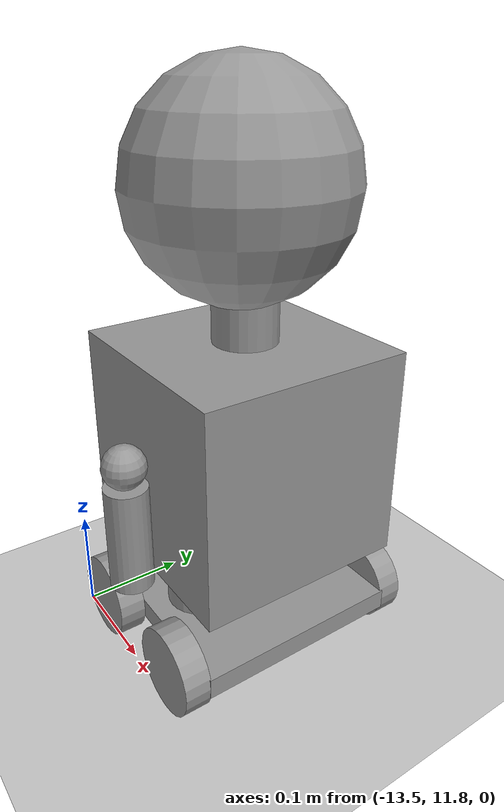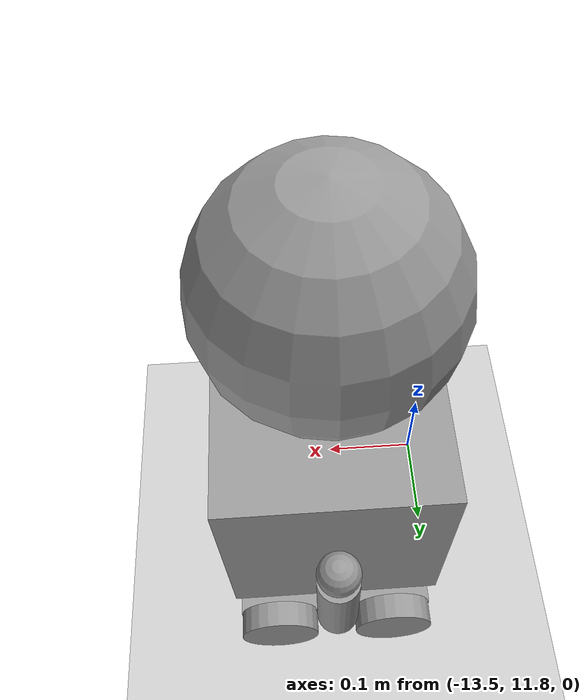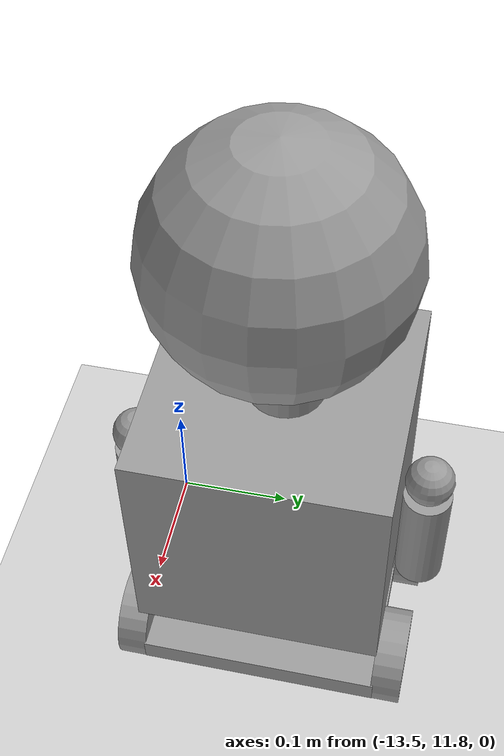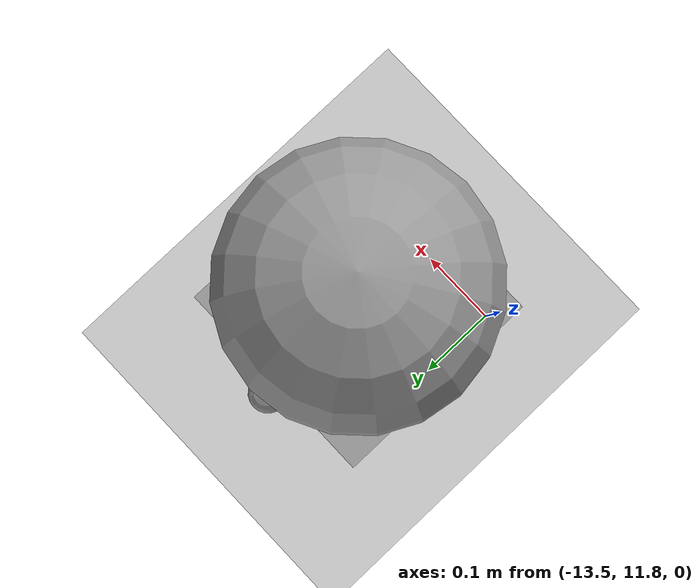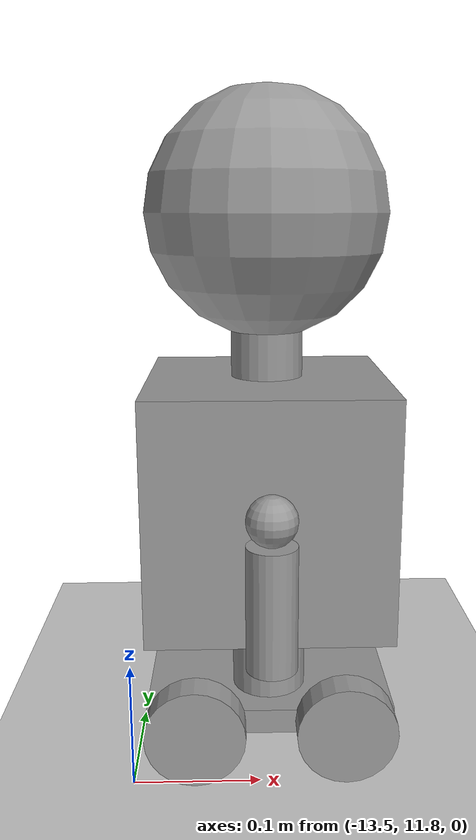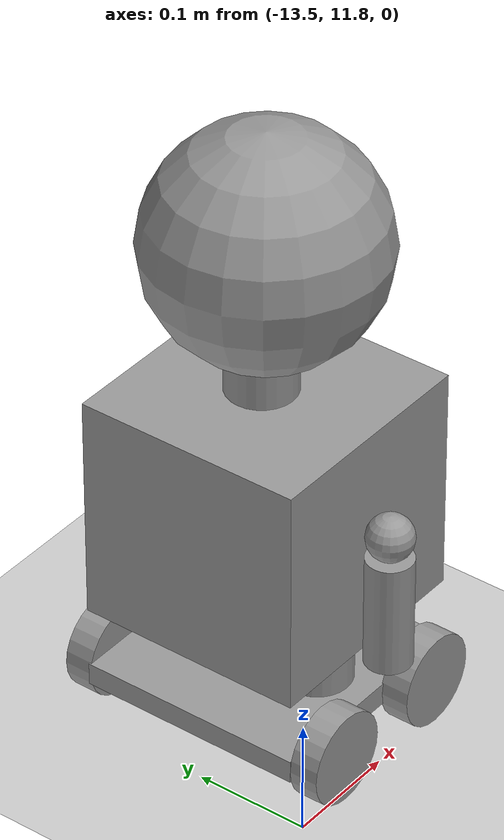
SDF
<sdf version="1.6">
 <world name="default">
  <model name="ground_plane">
   <static>1</static>
   <link name="link">
    <collision name="collision">
     <geometry><plane><normal>0 0 1</normal><size>100 100</size></plane></geometry>
     <surface><friction><ode><mu>100</mu><mu2>50</mu2></ode></friction></surface>
    </collision>
    <visual name="visual">
     <cast_shadows>0</cast_shadows>
     <geometry><plane><normal>0 0 1</normal><size>100 100</size></plane></geometry>
     <material>
      <script><uri>file://media/materials/scripts/gazebo.material</uri><name>Gazebo/Grey</name></script>
     </material>
    </visual>
   </link>
  </model>
  <model name="RoboX">
   <link name="link_0">
    <pose>2 1.99948 0.422775 0 -0 0</pose>
    <inertial>
     <mass>1</mass>
     <inertia>
      <ixx>0.166667</ixx>
      <ixy>0</ixy>
      <ixz>0</ixz>
      <iyy>0.166667</iyy>
      <iyz>0</iyz>
      <izz>0.166667</izz>
     </inertia>
    </inertial>
    <visual name="visual">
     <geometry><box><size>0.2 0.2 0.02</size></box></geometry>
     <material>
      <lighting>1</lighting>
      <script><uri>file://media/materials/scripts/gazebo.material</uri><name>Gazebo/Grey</name></script>
      <shader type="pixel"><normal_map>__default__</normal_map></shader>
      <ambient>0.3 0.3 0.3 1</ambient>
      <diffuse>0.7 0.7 0.7 1</diffuse>
      <specular>0.01 0.01 0.01 1</specular>
      <emissive>0 0 0 1</emissive>
     </material>
    </visual>
    <collision name="collision">
     <geometry><box><size>0.2 0.2 0.02</size></box></geometry>
     <surface>
      <friction>
       <ode><mu>1</mu><mu2>1</mu2><fdir1>0 0 0</fdir1><slip1>0</slip1><slip2>0</slip2></ode>
       <torsional>
        <coefficient>1</coefficient>
        <patch_radius>0</patch_radius>
        <surface_radius>0</surface_radius>
        <use_patch_radius>1</use_patch_radius>
        <ode><slip>0</slip></ode>
       </torsional>
      </friction>
      <bounce><restitution_coefficient>0</restitution_coefficient><threshold>1e+06</threshold></bounce>
      <contact>
       <collide_without_contact>0</collide_without_contact>
       <collide_without_contact_bitmask>1</collide_without_contact_bitmask>
       <collide_bitmask>1</collide_bitmask>
       <ode>
        <soft_cfm>0</soft_cfm>
        <soft_erp>0.2</soft_erp>
        <kp>1e+13</kp>
        <kd>1</kd>
        <max_vel>0.01</max_vel>
        <min_depth>0</min_depth>
       </ode>
       <bullet>
        <split_impulse>1</split_impulse>
        <split_impulse_penetration_threshold>-0.01</split_impulse_penetration_threshold>
        <soft_cfm>0</soft_cfm>
        <soft_erp>0.2</soft_erp>
        <kp>1e+13</kp>
        <kd>1</kd>
       </bullet>
      </contact>
     </surface>
    </collision>
   </link>
   <link name="link_1">
    <pose>1.94 1.88697 0.422775 1.5707 -0 0</pose>
    <inertial>
     <mass>1</mass>
     <inertia><ixx>0.145833</ixx><ixy>0</ixy><ixz>0</ixz><iyy>0.145833</iyy><iyz>0</iyz><izz>0.125</izz></inertia>
    </inertial>
    <visual name="visual">
     <geometry><cylinder><radius>0.04</radius><length>0.025</length></cylinder></geometry>
     <material>
      <lighting>1</lighting>
      <script><uri>file://media/materials/scripts/gazebo.material</uri><name>Gazebo/Grey</name></script>
      <shader type="pixel"><normal_map>__default__</normal_map></shader>
      <ambient>0.3 0.3 0.3 1</ambient>
      <diffuse>0.7 0.7 0.7 1</diffuse>
      <specular>0.01 0.01 0.01 1</specular>
      <emissive>0 0 0 1</emissive>
     </material>
    </visual>
    <collision name="collision">
     <geometry><cylinder><radius>0.04</radius><length>0.025</length></cylinder></geometry>
     <surface>
      <friction>
       <ode><mu>1</mu><mu2>1</mu2><fdir1>0 0 0</fdir1><slip1>0</slip1><slip2>0</slip2></ode>
       <torsional>
        <coefficient>1</coefficient>
        <patch_radius>0</patch_radius>
        <surface_radius>0</surface_radius>
        <use_patch_radius>1</use_patch_radius>
        <ode><slip>0</slip></ode>
       </torsional>
      </friction>
      <bounce><restitution_coefficient>0</restitution_coefficient><threshold>1e+06</threshold></bounce>
      <contact>
       <collide_without_contact>0</collide_without_contact>
       <collide_without_contact_bitmask>1</collide_without_contact_bitmask>
       <collide_bitmask>1</collide_bitmask>
       <ode>
        <soft_cfm>0</soft_cfm>
        <soft_erp>0.2</soft_erp>
        <kp>1e+13</kp>
        <kd>1</kd>
        <max_vel>0.01</max_vel>
        <min_depth>0</min_depth>
       </ode>
       <bullet>
        <split_impulse>1</split_impulse>
        <split_impulse_penetration_threshold>-0.01</split_impulse_penetration_threshold>
        <soft_cfm>0</soft_cfm>
        <soft_erp>0.2</soft_erp>
        <kp>1e+13</kp>
        <kd>1</kd>
       </bullet>
      </contact>
     </surface>
    </collision>
   </link>
   <link name="link_1_clone">
    <pose>1.94 2.11011 0.422775 1.5707 -0 0</pose>
    <inertial>
     <mass>1</mass>
     <inertia><ixx>0.145833</ixx><ixy>0</ixy><ixz>0</ixz><iyy>0.145833</iyy><iyz>0</iyz><izz>0.125</izz></inertia>
    </inertial>
    <visual name="visual">
     <geometry><cylinder><radius>0.04</radius><length>0.025</length></cylinder></geometry>
     <material>
      <lighting>1</lighting>
      <script><uri>file://media/materials/scripts/gazebo.material</uri><name>Gazebo/Grey</name></script>
      <shader type="pixel"><normal_map>__default__</normal_map></shader>
      <ambient>0.3 0.3 0.3 1</ambient>
      <diffuse>0.7 0.7 0.7 1</diffuse>
      <specular>0.01 0.01 0.01 1</specular>
      <emissive>0 0 0 1</emissive>
     </material>
    </visual>
    <collision name="collision">
     <geometry><cylinder><radius>0.04</radius><length>0.025</length></cylinder></geometry>
     <surface>
      <friction>
       <ode><mu>1</mu><mu2>1</mu2><fdir1>0 0 0</fdir1><slip1>0</slip1><slip2>0</slip2></ode>
       <torsional>
        <coefficient>1</coefficient>
        <patch_radius>0</patch_radius>
        <surface_radius>0</surface_radius>
        <use_patch_radius>1</use_patch_radius>
        <ode><slip>0</slip></ode>
       </torsional>
      </friction>
      <bounce><restitution_coefficient>0</restitution_coefficient><threshold>1e+06</threshold></bounce>
      <contact>
       <collide_without_contact>0</collide_without_contact>
       <collide_without_contact_bitmask>1</collide_without_contact_bitmask>
       <collide_bitmask>1</collide_bitmask>
       <ode>
        <soft_cfm>0</soft_cfm>
        <soft_erp>0.2</soft_erp>
        <kp>1e+13</kp>
        <kd>1</kd>
        <max_vel>0.01</max_vel>
        <min_depth>0</min_depth>
       </ode>
       <bullet>
        <split_impulse>1</split_impulse>
        <split_impulse_penetration_threshold>-0.01</split_impulse_penetration_threshold>
        <soft_cfm>0</soft_cfm>
        <soft_erp>0.2</soft_erp>
        <kp>1e+13</kp>
        <kd>1</kd>
       </bullet>
      </contact>
     </surface>
    </collision>
   </link>
   <link name="link_1_clone_0">
    <pose>2.06 1.88807 0.422775 1.5707 -0 0</pose>
    <inertial>
     <mass>1</mass>
     <inertia><ixx>0.145833</ixx><ixy>0</ixy><ixz>0</ixz><iyy>0.145833</iyy><iyz>0</iyz><izz>0.125</izz></inertia>
    </inertial>
    <visual name="visual">
     <geometry><cylinder><radius>0.04</radius><length>0.025</length></cylinder></geometry>
     <material>
      <lighting>1</lighting>
      <script><uri>file://media/materials/scripts/gazebo.material</uri><name>Gazebo/Grey</name></script>
      <shader type="pixel"><normal_map>__default__</normal_map></shader>
      <ambient>0.3 0.3 0.3 1</ambient>
      <diffuse>0.7 0.7 0.7 1</diffuse>
      <specular>0.01 0.01 0.01 1</specular>
      <emissive>0 0 0 1</emissive>
     </material>
    </visual>
    <collision name="collision">
     <geometry><cylinder><radius>0.04</radius><length>0.025</length></cylinder></geometry>
     <surface>
      <friction>
       <ode><mu>1</mu><mu2>1</mu2><fdir1>0 0 0</fdir1><slip1>0</slip1><slip2>0</slip2></ode>
       <torsional>
        <coefficient>1</coefficient>
        <patch_radius>0</patch_radius>
        <surface_radius>0</surface_radius>
        <use_patch_radius>1</use_patch_radius>
        <ode><slip>0</slip></ode>
       </torsional>
      </friction>
      <bounce><restitution_coefficient>0</restitution_coefficient><threshold>1e+06</threshold></bounce>
      <contact>
       <collide_without_contact>0</collide_without_contact>
       <collide_without_contact_bitmask>1</collide_without_contact_bitmask>
       <collide_bitmask>1</collide_bitmask>
       <ode>
        <soft_cfm>0</soft_cfm>
        <soft_erp>0.2</soft_erp>
        <kp>1e+13</kp>
        <kd>1</kd>
        <max_vel>0.01</max_vel>
        <min_depth>0</min_depth>
       </ode>
       <bullet>
        <split_impulse>1</split_impulse>
        <split_impulse_penetration_threshold>-0.01</split_impulse_penetration_threshold>
        <soft_cfm>0</soft_cfm>
        <soft_erp>0.2</soft_erp>
        <kp>1e+13</kp>
        <kd>1</kd>
       </bullet>
      </contact>
     </surface>
    </collision>
   </link>
   <link name="link_1_clone_1">
    <pose>2.06 2.11011 0.422775 1.5707 -0 0</pose>
    <inertial>
     <mass>1</mass>
     <inertia><ixx>0.145833</ixx><ixy>0</ixy><ixz>0</ixz><iyy>0.145833</iyy><iyz>0</iyz><izz>0.125</izz></inertia>
    </inertial>
    <visual name="visual">
     <geometry><cylinder><radius>0.04</radius><length>0.025</length></cylinder></geometry>
     <material>
      <lighting>1</lighting>
      <script><uri>file://media/materials/scripts/gazebo.material</uri><name>Gazebo/Grey</name></script>
      <shader type="pixel"><normal_map>__default__</normal_map></shader>
      <ambient>0.3 0.3 0.3 1</ambient>
      <diffuse>0.7 0.7 0.7 1</diffuse>
      <specular>0.01 0.01 0.01 1</specular>
      <emissive>0 0 0 1</emissive>
     </material>
    </visual>
    <collision name="collision">
     <geometry><cylinder><radius>0.04</radius><length>0.025</length></cylinder></geometry>
     <surface>
      <friction>
       <ode><mu>1</mu><mu2>1</mu2><fdir1>0 0 0</fdir1><slip1>0</slip1><slip2>0</slip2></ode>
       <torsional>
        <coefficient>1</coefficient>
        <patch_radius>0</patch_radius>
        <surface_radius>0</surface_radius>
        <use_patch_radius>1</use_patch_radius>
        <ode><slip>0</slip></ode>
       </torsional>
      </friction>
      <bounce><restitution_coefficient>0</restitution_coefficient><threshold>1e+06</threshold></bounce>
      <contact>
       <collide_without_contact>0</collide_without_contact>
       <collide_without_contact_bitmask>1</collide_without_contact_bitmask>
       <collide_bitmask>1</collide_bitmask>
       <ode>
        <soft_cfm>0</soft_cfm>
        <soft_erp>0.2</soft_erp>
        <kp>1e+13</kp>
        <kd>1</kd>
        <max_vel>0.01</max_vel>
        <min_depth>0</min_depth>
       </ode>
       <bullet>
        <split_impulse>1</split_impulse>
        <split_impulse_penetration_threshold>-0.01</split_impulse_penetration_threshold>
        <soft_cfm>0</soft_cfm>
        <soft_erp>0.2</soft_erp>
        <kp>1e+13</kp>
        <kd>1</kd>
       </bullet>
      </contact>
     </surface>
    </collision>
   </link>
   <link name="link_2">
    <pose>2 1.94895 0.472775 0 -0 0</pose>
    <inertial>
     <mass>1</mass>
     <inertia><ixx>0.145833</ixx><ixy>0</ixy><ixz>0</ixz><iyy>0.145833</iyy><iyz>0</iyz><izz>0.125</izz></inertia>
    </inertial>
    <visual name="visual">
     <geometry><cylinder><radius>0.03</radius><length>0.1</length></cylinder></geometry>
     <material>
      <lighting>1</lighting>
      <script><uri>file://media/materials/scripts/gazebo.material</uri><name>Gazebo/Grey</name></script>
      <shader type="pixel"><normal_map>__default__</normal_map></shader>
      <ambient>0.3 0.3 0.3 1</ambient>
      <diffuse>0.7 0.7 0.7 1</diffuse>
      <specular>0.01 0.01 0.01 1</specular>
      <emissive>0 0 0 1</emissive>
     </material>
    </visual>
    <collision name="collision">
     <geometry><cylinder><radius>0.03</radius><length>0.1</length></cylinder></geometry>
     <surface>
      <friction>
       <ode><mu>1</mu><mu2>1</mu2><fdir1>0 0 0</fdir1><slip1>0</slip1><slip2>0</slip2></ode>
       <torsional>
        <coefficient>1</coefficient>
        <patch_radius>0</patch_radius>
        <surface_radius>0</surface_radius>
        <use_patch_radius>1</use_patch_radius>
        <ode><slip>0</slip></ode>
       </torsional>
      </friction>
      <bounce><restitution_coefficient>0</restitution_coefficient><threshold>1e+06</threshold></bounce>
      <contact>
       <collide_without_contact>0</collide_without_contact>
       <collide_without_contact_bitmask>1</collide_without_contact_bitmask>
       <collide_bitmask>1</collide_bitmask>
       <ode>
        <soft_cfm>0</soft_cfm>
        <soft_erp>0.2</soft_erp>
        <kp>1e+13</kp>
        <kd>1</kd>
        <max_vel>0.01</max_vel>
        <min_depth>0</min_depth>
       </ode>
       <bullet>
        <split_impulse>1</split_impulse>
        <split_impulse_penetration_threshold>-0.01</split_impulse_penetration_threshold>
        <soft_cfm>0</soft_cfm>
        <soft_erp>0.2</soft_erp>
        <kp>1e+13</kp>
        <kd>1</kd>
       </bullet>
      </contact>
     </surface>
    </collision>
   </link>
   <link name="link_2_clone">
    <pose>2 2.04895 0.472775 0 -0 0</pose>
    <inertial>
     <mass>1</mass>
     <inertia><ixx>0.145833</ixx><ixy>0</ixy><ixz>0</ixz><iyy>0.145833</iyy><iyz>0</iyz><izz>0.125</izz></inertia>
    </inertial>
    <visual name="visual">
     <geometry><cylinder><radius>0.03</radius><length>0.1</length></cylinder></geometry>
     <material>
      <lighting>1</lighting>
      <script><uri>file://media/materials/scripts/gazebo.material</uri><name>Gazebo/Grey</name></script>
      <shader type="pixel"><normal_map>__default__</normal_map></shader>
      <ambient>0.3 0.3 0.3 1</ambient>
      <diffuse>0.7 0.7 0.7 1</diffuse>
      <specular>0.01 0.01 0.01 1</specular>
      <emissive>0 0 0 1</emissive>
     </material>
    </visual>
    <collision name="collision">
     <geometry><cylinder><radius>0.03</radius><length>0.1</length></cylinder></geometry>
     <surface>
      <friction>
       <ode><mu>1</mu><mu2>1</mu2><fdir1>0 0 0</fdir1><slip1>0</slip1><slip2>0</slip2></ode>
       <torsional>
        <coefficient>1</coefficient>
        <patch_radius>0</patch_radius>
        <surface_radius>0</surface_radius>
        <use_patch_radius>1</use_patch_radius>
        <ode><slip>0</slip></ode>
       </torsional>
      </friction>
      <bounce><restitution_coefficient>0</restitution_coefficient><threshold>1e+06</threshold></bounce>
      <contact>
       <collide_without_contact>0</collide_without_contact>
       <collide_without_contact_bitmask>1</collide_without_contact_bitmask>
       <collide_bitmask>1</collide_bitmask>
       <ode>
        <soft_cfm>0</soft_cfm>
        <soft_erp>0.2</soft_erp>
        <kp>1e+13</kp>
        <kd>1</kd>
        <max_vel>0.01</max_vel>
        <min_depth>0</min_depth>
       </ode>
       <bullet>
        <split_impulse>1</split_impulse>
        <split_impulse_penetration_threshold>-0.01</split_impulse_penetration_threshold>
        <soft_cfm>0</soft_cfm>
        <soft_erp>0.2</soft_erp>
        <kp>1e+13</kp>
        <kd>1</kd>
       </bullet>
      </contact>
     </surface>
    </collision>
   </link>
   <link name="link_2_clone_clone">
    <pose>2 2.00366 0.721525 0 -0 0</pose>
    <inertial>
     <mass>1</mass>
     <inertia><ixx>0.145833</ixx><ixy>0</ixy><ixz>0</ixz><iyy>0.145833</iyy><iyz>0</iyz><izz>0.125</izz></inertia>
    </inertial>
    <visual name="visual">
     <geometry><cylinder><radius>0.03</radius><length>0.1</length></cylinder></geometry>
     <material>
      <lighting>1</lighting>
      <script><uri>file://media/materials/scripts/gazebo.material</uri><name>Gazebo/Grey</name></script>
      <shader type="pixel"><normal_map>__default__</normal_map></shader>
      <ambient>0.3 0.3 0.3 1</ambient>
      <diffuse>0.7 0.7 0.7 1</diffuse>
      <specular>0.01 0.01 0.01 1</specular>
      <emissive>0 0 0 1</emissive>
     </material>
    </visual>
    <collision name="collision">
     <geometry><cylinder><radius>0.03</radius><length>0.1</length></cylinder></geometry>
     <surface>
      <friction>
       <ode><mu>1</mu><mu2>1</mu2><fdir1>0 0 0</fdir1><slip1>0</slip1><slip2>0</slip2></ode>
       <torsional>
        <coefficient>1</coefficient>
        <patch_radius>0</patch_radius>
        <surface_radius>0</surface_radius>
        <use_patch_radius>1</use_patch_radius>
        <ode><slip>0</slip></ode>
       </torsional>
      </friction>
      <bounce><restitution_coefficient>0</restitution_coefficient><threshold>1e+06</threshold></bounce>
      <contact>
       <collide_without_contact>0</collide_without_contact>
       <collide_without_contact_bitmask>1</collide_without_contact_bitmask>
       <collide_bitmask>1</collide_bitmask>
       <ode>
        <soft_cfm>0</soft_cfm>
        <soft_erp>0.2</soft_erp>
        <kp>1e+13</kp>
        <kd>1</kd>
        <max_vel>0.01</max_vel>
        <min_depth>0</min_depth>
       </ode>
       <bullet>
        <split_impulse>1</split_impulse>
        <split_impulse_penetration_threshold>-0.01</split_impulse_penetration_threshold>
        <soft_cfm>0</soft_cfm>
        <soft_erp>0.2</soft_erp>
        <kp>1e+13</kp>
        <kd>1</kd>
       </bullet>
      </contact>
     </surface>
    </collision>
   </link>
   <link name="link_3">
    <pose>2 1.99948 0.587061 0 -0 0</pose>
    <inertial>
     <mass>1</mass>
     <inertia>
      <ixx>0.166667</ixx>
      <ixy>0</ixy>
      <ixz>0</ixz>
      <iyy>0.166667</iyy>
      <iyz>0</iyz>
      <izz>0.166667</izz>
     </inertia>
    </inertial>
    <visual name="visual">
     <geometry><box><size>0.2 0.2 0.2</size></box></geometry>
     <material>
      <lighting>1</lighting>
      <script><uri>file://media/materials/scripts/gazebo.material</uri><name>Gazebo/Grey</name></script>
      <shader type="pixel"><normal_map>__default__</normal_map></shader>
      <ambient>0.3 0.3 0.3 1</ambient>
      <diffuse>0.7 0.7 0.7 1</diffuse>
      <specular>0.01 0.01 0.01 1</specular>
      <emissive>0 0 0 1</emissive>
     </material>
    </visual>
    <collision name="collision">
     <geometry><box><size>0.2 0.2 0.2</size></box></geometry>
     <surface>
      <friction>
       <ode><mu>1</mu><mu2>1</mu2><fdir1>0 0 0</fdir1><slip1>0</slip1><slip2>0</slip2></ode>
       <torsional>
        <coefficient>1</coefficient>
        <patch_radius>0</patch_radius>
        <surface_radius>0</surface_radius>
        <use_patch_radius>1</use_patch_radius>
        <ode><slip>0</slip></ode>
       </torsional>
      </friction>
      <bounce><restitution_coefficient>0</restitution_coefficient><threshold>1e+06</threshold></bounce>
      <contact>
       <collide_without_contact>0</collide_without_contact>
       <collide_without_contact_bitmask>1</collide_without_contact_bitmask>
       <collide_bitmask>1</collide_bitmask>
       <ode>
        <soft_cfm>0</soft_cfm>
        <soft_erp>0.2</soft_erp>
        <kp>1e+13</kp>
        <kd>1</kd>
        <max_vel>0.01</max_vel>
        <min_depth>0</min_depth>
       </ode>
       <bullet>
        <split_impulse>1</split_impulse>
        <split_impulse_penetration_threshold>-0.01</split_impulse_penetration_threshold>
        <soft_cfm>0</soft_cfm>
        <soft_erp>0.2</soft_erp>
        <kp>1e+13</kp>
        <kd>1</kd>
       </bullet>
      </contact>
     </surface>
    </collision>
   </link>
   <link name="link_4">
    <pose>2 1.99901 0.821525 0 -0 0</pose>
    <inertial>
     <mass>1</mass>
     <inertia><ixx>0.1</ixx><ixy>0</ixy><ixz>0</ixz><iyy>0.1</iyy><iyz>0</iyz><izz>0.1</izz></inertia>
    </inertial>
    <visual name="visual">
     <geometry><sphere><radius>0.1</radius></sphere></geometry>
     <material>
      <lighting>1</lighting>
      <script><uri>file://media/materials/scripts/gazebo.material</uri><name>Gazebo/Grey</name></script>
      <shader type="pixel"><normal_map>__default__</normal_map></shader>
      <ambient>0.3 0.3 0.3 1</ambient>
      <diffuse>0.7 0.7 0.7 1</diffuse>
      <specular>0.01 0.01 0.01 1</specular>
      <emissive>0 0 0 1</emissive>
     </material>
    </visual>
    <collision name="collision">
     <geometry><sphere><radius>0.1</radius></sphere></geometry>
     <surface>
      <friction>
       <ode><mu>1</mu><mu2>1</mu2><fdir1>0 0 0</fdir1><slip1>0</slip1><slip2>0</slip2></ode>
       <torsional>
        <coefficient>1</coefficient>
        <patch_radius>0</patch_radius>
        <surface_radius>0</surface_radius>
        <use_patch_radius>1</use_patch_radius>
        <ode><slip>0</slip></ode>
       </torsional>
      </friction>
      <bounce><restitution_coefficient>0</restitution_coefficient><threshold>1e+06</threshold></bounce>
      <contact>
       <collide_without_contact>0</collide_without_contact>
       <collide_without_contact_bitmask>1</collide_without_contact_bitmask>
       <collide_bitmask>1</collide_bitmask>
       <ode>
        <soft_cfm>0</soft_cfm>
        <soft_erp>0.2</soft_erp>
        <kp>1e+13</kp>
        <kd>1</kd>
        <max_vel>0.01</max_vel>
        <min_depth>0</min_depth>
       </ode>
       <bullet>
        <split_impulse>1</split_impulse>
        <split_impulse_penetration_threshold>-0.01</split_impulse_penetration_threshold>
        <soft_cfm>0</soft_cfm>
        <soft_erp>0.2</soft_erp>
        <kp>1e+13</kp>
        <kd>1</kd>
       </bullet>
      </contact>
     </surface>
    </collision>
   </link>
   <link name="link_5">
    <pose>2 2.11994 0.600204 0 -0 0</pose>
    <inertial>
     <mass>1</mass>
     <inertia><ixx>0.1</ixx><ixy>0</ixy><ixz>0</ixz><iyy>0.1</iyy><iyz>0</iyz><izz>0.1</izz></inertia>
    </inertial>
    <visual name="visual">
     <geometry><sphere><radius>0.02</radius></sphere></geometry>
     <material>
      <lighting>1</lighting>
      <script><uri>file://media/materials/scripts/gazebo.material</uri><name>Gazebo/Grey</name></script>
      <shader type="pixel"><normal_map>__default__</normal_map></shader>
      <ambient>0.3 0.3 0.3 1</ambient>
      <diffuse>0.7 0.7 0.7 1</diffuse>
      <specular>0.01 0.01 0.01 1</specular>
      <emissive>0 0 0 1</emissive>
     </material>
    </visual>
    <collision name="collision">
     <geometry><sphere><radius>0.02</radius></sphere></geometry>
     <surface>
      <friction>
       <ode><mu>1</mu><mu2>1</mu2><fdir1>0 0 0</fdir1><slip1>0</slip1><slip2>0</slip2></ode>
       <torsional>
        <coefficient>1</coefficient>
        <patch_radius>0</patch_radius>
        <surface_radius>0</surface_radius>
        <use_patch_radius>1</use_patch_radius>
        <ode><slip>0</slip></ode>
       </torsional>
      </friction>
      <bounce><restitution_coefficient>0</restitution_coefficient><threshold>1e+06</threshold></bounce>
      <contact>
       <collide_without_contact>0</collide_without_contact>
       <collide_without_contact_bitmask>1</collide_without_contact_bitmask>
       <collide_bitmask>1</collide_bitmask>
       <ode>
        <soft_cfm>0</soft_cfm>
        <soft_erp>0.2</soft_erp>
        <kp>1e+13</kp>
        <kd>1</kd>
        <max_vel>0.01</max_vel>
        <min_depth>0</min_depth>
       </ode>
       <bullet>
        <split_impulse>1</split_impulse>
        <split_impulse_penetration_threshold>-0.01</split_impulse_penetration_threshold>
        <soft_cfm>0</soft_cfm>
        <soft_erp>0.2</soft_erp>
        <kp>1e+13</kp>
        <kd>1</kd>
       </bullet>
      </contact>
     </surface>
    </collision>
   </link>
   <link name="link_5_clone">
    <pose>2 1.87994 0.600204 0 -0 0</pose>
    <inertial>
     <mass>1</mass>
     <inertia><ixx>0.1</ixx><ixy>0</ixy><ixz>0</ixz><iyy>0.1</iyy><iyz>0</iyz><izz>0.1</izz></inertia>
    </inertial>
    <visual name="visual">
     <geometry><sphere><radius>0.02</radius></sphere></geometry>
     <material>
      <lighting>1</lighting>
      <script><uri>file://media/materials/scripts/gazebo.material</uri><name>Gazebo/Grey</name></script>
      <shader type="pixel"><normal_map>__default__</normal_map></shader>
      <ambient>0.3 0.3 0.3 1</ambient>
      <diffuse>0.7 0.7 0.7 1</diffuse>
      <specular>0.01 0.01 0.01 1</specular>
      <emissive>0 0 0 1</emissive>
     </material>
    </visual>
    <collision name="collision">
     <geometry><sphere><radius>0.02</radius></sphere></geometry>
     <surface>
      <friction>
       <ode><mu>1</mu><mu2>1</mu2><fdir1>0 0 0</fdir1><slip1>0</slip1><slip2>0</slip2></ode>
       <torsional>
        <coefficient>1</coefficient>
        <patch_radius>0</patch_radius>
        <surface_radius>0</surface_radius>
        <use_patch_radius>1</use_patch_radius>
        <ode><slip>0</slip></ode>
       </torsional>
      </friction>
      <bounce><restitution_coefficient>0</restitution_coefficient><threshold>1e+06</threshold></bounce>
      <contact>
       <collide_without_contact>0</collide_without_contact>
       <collide_without_contact_bitmask>1</collide_without_contact_bitmask>
       <collide_bitmask>1</collide_bitmask>
       <ode>
        <soft_cfm>0</soft_cfm>
        <soft_erp>0.2</soft_erp>
        <kp>1e+13</kp>
        <kd>1</kd>
        <max_vel>0.01</max_vel>
        <min_depth>0</min_depth>
       </ode>
       <bullet>
        <split_impulse>1</split_impulse>
        <split_impulse_penetration_threshold>-0.01</split_impulse_penetration_threshold>
        <soft_cfm>0</soft_cfm>
        <soft_erp>0.2</soft_erp>
        <kp>1e+13</kp>
        <kd>1</kd>
       </bullet>
      </contact>
     </surface>
    </collision>
   </link>
   <link name="link_6">
    <pose>2 2.11994 0.531067 0 -0 0</pose>
    <inertial>
     <mass>1</mass>
     <inertia><ixx>0.145833</ixx><ixy>0</ixy><ixz>0</ixz><iyy>0.145833</iyy><iyz>0</iyz><izz>0.125</izz></inertia>
    </inertial>
    <visual name="visual">
     <geometry><cylinder><radius>0.02</radius><length>0.1</length></cylinder></geometry>
     <material>
      <lighting>1</lighting>
      <script><uri>file://media/materials/scripts/gazebo.material</uri><name>Gazebo/Grey</name></script>
      <shader type="pixel"><normal_map>__default__</normal_map></shader>
      <ambient>0.3 0.3 0.3 1</ambient>
      <diffuse>0.7 0.7 0.7 1</diffuse>
      <specular>0.01 0.01 0.01 1</specular>
      <emissive>0 0 0 1</emissive>
     </material>
    </visual>
    <collision name="collision">
     <geometry><cylinder><radius>0.02</radius><length>0.1</length></cylinder></geometry>
     <surface>
      <friction>
       <ode><mu>1</mu><mu2>1</mu2><fdir1>0 0 0</fdir1><slip1>0</slip1><slip2>0</slip2></ode>
       <torsional>
        <coefficient>1</coefficient>
        <patch_radius>0</patch_radius>
        <surface_radius>0</surface_radius>
        <use_patch_radius>1</use_patch_radius>
        <ode><slip>0</slip></ode>
       </torsional>
      </friction>
      <bounce><restitution_coefficient>0</restitution_coefficient><threshold>1e+06</threshold></bounce>
      <contact>
       <collide_without_contact>0</collide_without_contact>
       <collide_without_contact_bitmask>1</collide_without_contact_bitmask>
       <collide_bitmask>1</collide_bitmask>
       <ode>
        <soft_cfm>0</soft_cfm>
        <soft_erp>0.2</soft_erp>
        <kp>1e+13</kp>
        <kd>1</kd>
        <max_vel>0.01</max_vel>
        <min_depth>0</min_depth>
       </ode>
       <bullet>
        <split_impulse>1</split_impulse>
        <split_impulse_penetration_threshold>-0.01</split_impulse_penetration_threshold>
        <soft_cfm>0</soft_cfm>
        <soft_erp>0.2</soft_erp>
        <kp>1e+13</kp>
        <kd>1</kd>
       </bullet>
      </contact>
     </surface>
    </collision>
   </link>
   <link name="link_6_clone">
    <pose>2 1.87994 0.531067 0 -0 0</pose>
    <inertial>
     <mass>1</mass>
     <inertia><ixx>0.145833</ixx><ixy>0</ixy><ixz>0</ixz><iyy>0.145833</iyy><iyz>0</iyz><izz>0.125</izz></inertia>
    </inertial>
    <visual name="visual">
     <geometry><cylinder><radius>0.02</radius><length>0.1</length></cylinder></geometry>
     <material>
      <lighting>1</lighting>
      <script><uri>file://media/materials/scripts/gazebo.material</uri><name>Gazebo/Grey</name></script>
      <shader type="pixel"><normal_map>__default__</normal_map></shader>
      <ambient>0.3 0.3 0.3 1</ambient>
      <diffuse>0.7 0.7 0.7 1</diffuse>
      <specular>0.01 0.01 0.01 1</specular>
      <emissive>0 0 0 1</emissive>
     </material>
    </visual>
    <collision name="collision">
     <geometry><cylinder><radius>0.02</radius><length>0.1</length></cylinder></geometry>
     <surface>
      <friction>
       <ode><mu>1</mu><mu2>1</mu2><fdir1>0 0 0</fdir1><slip1>0</slip1><slip2>0</slip2></ode>
       <torsional>
        <coefficient>1</coefficient>
        <patch_radius>0</patch_radius>
        <surface_radius>0</surface_radius>
        <use_patch_radius>1</use_patch_radius>
        <ode><slip>0</slip></ode>
       </torsional>
      </friction>
      <bounce><restitution_coefficient>0</restitution_coefficient><threshold>1e+06</threshold></bounce>
      <contact>
       <collide_without_contact>0</collide_without_contact>
       <collide_without_contact_bitmask>1</collide_without_contact_bitmask>
       <collide_bitmask>1</collide_bitmask>
       <ode>
        <soft_cfm>0</soft_cfm>
        <soft_erp>0.2</soft_erp>
        <kp>1e+13</kp>
        <kd>1</kd>
        <max_vel>0.01</max_vel>
        <min_depth>0</min_depth>
       </ode>
       <bullet>
        <split_impulse>1</split_impulse>
        <split_impulse_penetration_threshold>-0.01</split_impulse_penetration_threshold>
        <soft_cfm>0</soft_cfm>
        <soft_erp>0.2</soft_erp>
        <kp>1e+13</kp>
        <kd>1</kd>
       </bullet>
      </contact>
     </surface>
    </collision>
   </link>
   <joint name="link_wheel1" type="revolute">
    <parent>link_0</parent>
    <child>link_1</child>
    <axis>
     <xyz>0 0 1</xyz>
     <use_parent_model_frame>0</use_parent_model_frame>
     <limit>
      <lower>-1.79769e+308</lower>
      <upper>1.79769e+308</upper>
      <effort>-1</effort>
      <velocity>-1</velocity>
     </limit>
     <dynamics>
      <spring_reference>0</spring_reference>
      <spring_stiffness>0</spring_stiffness>
      <damping>0</damping>
      <friction>0</friction>
     </dynamics>
    </axis>
    <physics>
     <ode><limit><cfm>0</cfm><erp>0.2</erp></limit><suspension><cfm>0</cfm><erp>0.2</erp></suspension></ode>
    </physics>
   </joint>
   <joint name="link_wheel2" type="revolute">
    <parent>link_0</parent>
    <child>link_1_clone</child>
    <axis>
     <xyz>0 0 1</xyz>
     <use_parent_model_frame>0</use_parent_model_frame>
     <limit>
      <lower>-1.79769e+308</lower>
      <upper>1.79769e+308</upper>
      <effort>-1</effort>
      <velocity>-1</velocity>
     </limit>
     <dynamics>
      <spring_reference>0</spring_reference>
      <spring_stiffness>0</spring_stiffness>
      <damping>0</damping>
      <friction>0</friction>
     </dynamics>
    </axis>
    <physics>
     <ode><limit><cfm>0</cfm><erp>0.2</erp></limit><suspension><cfm>0</cfm><erp>0.2</erp></suspension></ode>
    </physics>
   </joint>
   <joint name="link_wheel3" type="revolute">
    <parent>link_0</parent>
    <child>link_1_clone_0</child>
    <axis>
     <xyz>0 0 1</xyz>
     <use_parent_model_frame>0</use_parent_model_frame>
     <limit>
      <lower>-1.79769e+308</lower>
      <upper>1.79769e+308</upper>
      <effort>-1</effort>
      <velocity>-1</velocity>
     </limit>
     <dynamics>
      <spring_reference>0</spring_reference>
      <spring_stiffness>0</spring_stiffness>
      <damping>0</damping>
      <friction>0</friction>
     </dynamics>
    </axis>
    <physics>
     <ode><limit><cfm>0</cfm><erp>0.2</erp></limit><suspension><cfm>0</cfm><erp>0.2</erp></suspension></ode>
    </physics>
   </joint>
   <joint name="link_wheel4" type="revolute">
    <parent>link_0</parent>
    <child>link_1_clone_1</child>
    <axis>
     <xyz>0 0 1</xyz>
     <use_parent_model_frame>0</use_parent_model_frame>
     <limit>
      <lower>-1.79769e+308</lower>
      <upper>1.79769e+308</upper>
      <effort>-1</effort>
      <velocity>-1</velocity>
     </limit>
     <dynamics>
      <spring_reference>0</spring_reference>
      <spring_stiffness>0</spring_stiffness>
      <damping>0</damping>
      <friction>0</friction>
     </dynamics>
    </axis>
    <physics>
     <ode><limit><cfm>0</cfm><erp>0.2</erp></limit><suspension><cfm>0</cfm><erp>0.2</erp></suspension></ode>
    </physics>
   </joint>
   <joint name="link_leg_R" type="fixed">
    <parent>link_2</parent>
    <child>link_0</child>
    <physics>
     <ode><limit><cfm>0</cfm><erp>0.2</erp></limit><suspension><cfm>0</cfm><erp>0.2</erp></suspension></ode>
    </physics>
   </joint>
   <joint name="link_leg_L" type="fixed">
    <parent>link_2_clone</parent>
    <child>link_0</child>
    <physics>
     <ode><limit><cfm>0</cfm><erp>0.2</erp></limit><suspension><cfm>0</cfm><erp>0.2</erp></suspension></ode>
    </physics>
   </joint>
   <joint name="link_body_leg_L" type="fixed">
    <parent>link_3</parent>
    <child>link_2_clone</child>
    <physics>
     <ode><limit><cfm>0</cfm><erp>0.2</erp></limit><suspension><cfm>0</cfm><erp>0.2</erp></suspension></ode>
    </physics>
   </joint>
   <joint name="link_body_neck" type="fixed">
    <parent>link_3</parent>
    <child>link_2_clone_clone</child>
    <physics>
     <ode><limit><cfm>0</cfm><erp>0.2</erp></limit><suspension><cfm>0</cfm><erp>0.2</erp></suspension></ode>
    </physics>
   </joint>
   <joint name="link_body_L.arm" type="fixed">
    <parent>link_3</parent>
    <child>link_5</child>
    <physics>
     <ode><limit><cfm>0</cfm><erp>0.2</erp></limit><suspension><cfm>0</cfm><erp>0.2</erp></suspension></ode>
    </physics>
   </joint>
   <joint name="link_body_R.arm" type="fixed">
    <parent>link_3</parent>
    <child>link_5_clone</child>
    <physics>
     <ode><limit><cfm>0</cfm><erp>0.2</erp></limit><suspension><cfm>0</cfm><erp>0.2</erp></suspension></ode>
    </physics>
   </joint>
   <joint name="link_body_leg_R" type="fixed">
    <parent>link_3</parent>
    <child>link_2</child>
    <physics>
     <ode><limit><cfm>0</cfm><erp>0.2</erp></limit><suspension><cfm>0</cfm><erp>0.2</erp></suspension></ode>
    </physics>
   </joint>
   <joint name="link_head_neck" type="fixed">
    <parent>link_4</parent>
    <child>link_2_clone_clone</child>
    <physics>
     <ode><limit><cfm>0</cfm><erp>0.2</erp></limit><suspension><cfm>0</cfm><erp>0.2</erp></suspension></ode>
    </physics>
   </joint>
   <joint name="link_L_arm" type="prismatic">
    <parent>link_5</parent>
    <child>link_6</child>
    <axis>
     <xyz>0 1 0</xyz>
     <use_parent_model_frame>0</use_parent_model_frame>
     <limit>
      <lower>-1.79769e+308</lower>
      <upper>1.79769e+308</upper>
      <effort>-1</effort>
      <velocity>-1</velocity>
     </limit>
     <dynamics>
      <spring_reference>0</spring_reference>
      <spring_stiffness>0</spring_stiffness>
      <damping>0</damping>
      <friction>0</friction>
     </dynamics>
    </axis>
    <physics>
     <ode><limit><cfm>0</cfm><erp>0.2</erp></limit><suspension><cfm>0</cfm><erp>0.2</erp></suspension></ode>
    </physics>
   </joint>
   <joint name="link_R_arm" type="prismatic">
    <parent>link_5_clone</parent>
    <child>link_6_clone</child>
    <axis>
     <xyz>0 1 0</xyz>
     <use_parent_model_frame>0</use_parent_model_frame>
     <limit>
      <lower>-1.79769e+308</lower>
      <upper>1.79769e+308</upper>
      <effort>-1</effort>
      <velocity>-1</velocity>
     </limit>
     <dynamics>
      <spring_reference>0</spring_reference>
      <spring_stiffness>0</spring_stiffness>
      <damping>0</damping>
      <friction>0</friction>
     </dynamics>
    </axis>
    <physics>
     <ode><limit><cfm>0</cfm><erp>0.2</erp></limit><suspension><cfm>0</cfm><erp>0.2</erp></suspension></ode>
    </physics>
   </joint>
   <static>0</static>
   <pose>-15.3951 9.92355 -0.383137 0.000145 -4.6e-05 -0.002035</pose>
  </model>
 </world>
</sdf>
